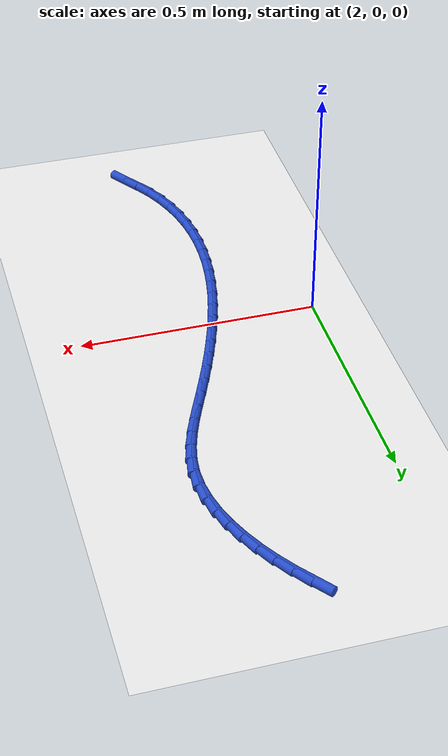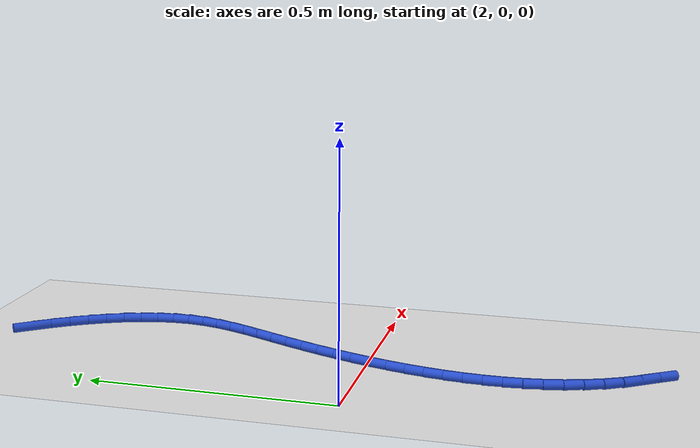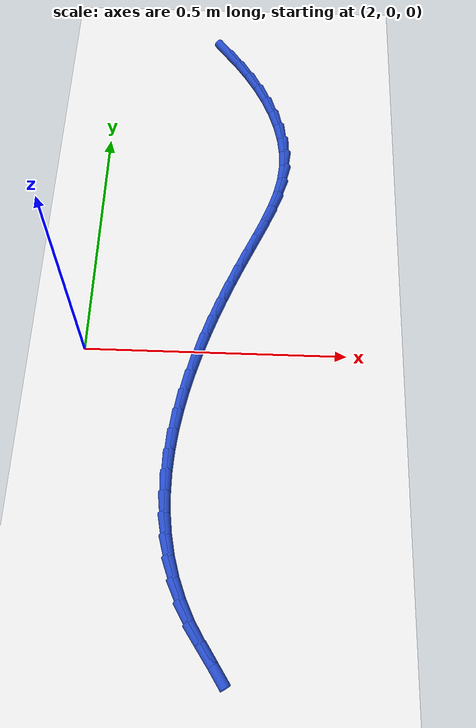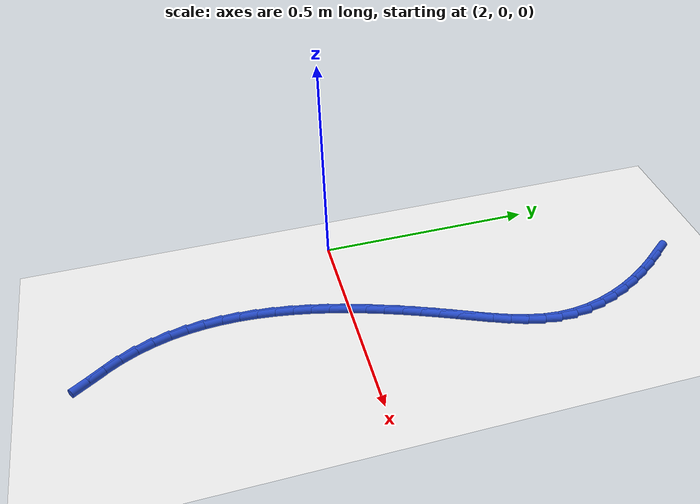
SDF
<sdf version="1.6">
 <world name="default">
  <model name="ground_plane">
   <static>1</static>
   <link name="link">
    <collision name="collision">
     <geometry><plane><normal>0 0 1</normal><size>100 100</size></plane></geometry>
     <surface><friction><ode><mu>100</mu><mu2>50</mu2></ode></friction></surface>
    </collision>
    <visual name="visual">
     <cast_shadows>0</cast_shadows>
     <geometry><plane><normal>0 0 1</normal><size>100 100</size></plane></geometry>
     <material>
      <script><uri>file://media/materials/scripts/gazebo.material</uri><name>Gazebo/WhiteGlow</name></script>
     </material>
    </visual>
   </link>
  </model>
  <model name="line">
   <link name="link_94">
    <pose>2.243678991151445 0.7526228496867304 0.01 0 1.57 -0.906889756862248</pose>
    <collision name="collision">
     <geometry><cylinder><radius>0.01</radius><length>0.08</length></cylinder></geometry>
    </collision>
    <visual name="visual">
     <material>
      <script><name>Gazebo/Blue</name><uri>file://media/materials/scripts/gazebo.material</uri></script>
     </material>
     <geometry><cylinder><radius>0.01</radius><length>0.08</length></cylinder></geometry>
    </visual>
   </link>
   <link name="link_95">
    <pose>2.268815365783483 0.7204949092897787 0.01 0 1.57 -0.9615525213683467</pose>
    <collision name="collision">
     <geometry><cylinder><radius>0.01</radius><length>0.08</length></cylinder></geometry>
    </collision>
    <visual name="visual">
     <material>
      <script><name>Gazebo/Blue</name><uri>file://media/materials/scripts/gazebo.material</uri></script>
     </material>
     <geometry><cylinder><radius>0.01</radius><length>0.08</length></cylinder></geometry>
    </visual>
   </link>
   <link name="link_96">
    <pose>2.292071177973598 0.687167284648563 0.01 0 1.57 -1.0210614063245282</pose>
    <collision name="collision">
     <geometry><cylinder><radius>0.01</radius><length>0.08</length></cylinder></geometry>
    </collision>
    <visual name="visual">
     <material>
      <script><name>Gazebo/Blue</name><uri>file://media/materials/scripts/gazebo.material</uri></script>
     </material>
     <geometry><cylinder><radius>0.01</radius><length>0.08</length></cylinder></geometry>
    </visual>
   </link>
   <link name="link_97">
    <pose>2.313108702196502 0.6528337902882548 0.01 0 1.57 -1.0866782366630476</pose>
    <collision name="collision">
     <geometry><cylinder><radius>0.01</radius><length>0.08</length></cylinder></geometry>
    </collision>
    <visual name="visual">
     <material>
      <script><name>Gazebo/Blue</name><uri>file://media/materials/scripts/gazebo.material</uri></script>
     </material>
     <geometry><cylinder><radius>0.01</radius><length>0.08</length></cylinder></geometry>
    </visual>
   </link>
   <link name="link_98">
    <pose>2.331590212926911 0.617688240734027 0.01 0 1.57 -1.159768734302943</pose>
    <collision name="collision">
     <geometry><cylinder><radius>0.01</radius><length>0.08</length></cylinder></geometry>
    </collision>
    <visual name="visual">
     <material>
      <script><name>Gazebo/Blue</name><uri>file://media/materials/scripts/gazebo.material</uri></script>
     </material>
     <geometry><cylinder><radius>0.01</radius><length>0.08</length></cylinder></geometry>
    </visual>
   </link>
   <link name="link_99">
    <pose>2.3471779846395364 0.581924450511052 0.01 0 1.57 -1.241762588432739</pose>
    <collision name="collision">
     <geometry><cylinder><radius>0.01</radius><length>0.08</length></cylinder></geometry>
    </collision>
    <visual name="visual">
     <material>
      <script><name>Gazebo/Blue</name><uri>file://media/materials/scripts/gazebo.material</uri></script>
     </material>
     <geometry><cylinder><radius>0.01</radius><length>0.08</length></cylinder></geometry>
    </visual>
   </link>
   <link name="link_100">
    <pose>2.359534291809092 0.5457362341445018 0.01 0 1.57 -1.3340418703348018</pose>
    <collision name="collision">
     <geometry><cylinder><radius>0.01</radius><length>0.08</length></cylinder></geometry>
    </collision>
    <visual name="visual">
     <material>
      <script><name>Gazebo/Blue</name><uri>file://media/materials/scripts/gazebo.material</uri></script>
     </material>
     <geometry><cylinder><radius>0.01</radius><length>0.08</length></cylinder></geometry>
    </visual>
   </link>
   <link name="link_101">
    <pose>2.36832140891029 0.5093174061595491 0.01 0 1.57 -1.4377205847119823</pose>
    <collision name="collision">
     <geometry><cylinder><radius>0.01</radius><length>0.08</length></cylinder></geometry>
    </collision>
    <visual name="visual">
     <material>
      <script><name>Gazebo/Blue</name><uri>file://media/materials/scripts/gazebo.material</uri></script>
     </material>
     <geometry><cylinder><radius>0.01</radius><length>0.08</length></cylinder></geometry>
    </visual>
   </link>
   <link name="link_102">
    <pose>2.373201610417844 0.47286178108136595 0.01 0 1.57 -1.553288893500495</pose>
    <collision name="collision">
     <geometry><cylinder><radius>0.01</radius><length>0.08</length></cylinder></geometry>
    </collision>
    <visual name="visual">
     <material>
      <script><name>Gazebo/Blue</name><uri>file://media/materials/scripts/gazebo.material</uri></script>
     </material>
     <geometry><cylinder><radius>0.01</radius><length>0.08</length></cylinder></geometry>
    </visual>
   </link>
   <link name="link_103">
    <pose>2.373837170806469 0.4365631734351253 0.01 0 1.57 1.4631555103608647</pose>
    <collision name="collision">
     <geometry><cylinder><radius>0.01</radius><length>0.08</length></cylinder></geometry>
    </collision>
    <visual name="visual">
     <material>
      <script><name>Gazebo/Blue</name><uri>file://media/materials/scripts/gazebo.material</uri></script>
     </material>
     <geometry><cylinder><radius>0.01</radius><length>0.08</length></cylinder></geometry>
    </visual>
   </link>
   <link name="link_104">
    <pose>2.369950645725549 0.4005963057045258 0.01 0 1.57 1.3499561610106796</pose>
    <collision name="collision">
     <geometry><cylinder><radius>0.01</radius><length>0.08</length></cylinder></geometry>
    </collision>
    <visual name="visual">
     <material>
      <script><name>Gazebo/Blue</name><uri>file://media/materials/scripts/gazebo.material</uri></script>
     </material>
     <geometry><cylinder><radius>0.01</radius><length>0.08</length></cylinder></geometry>
    </visual>
   </link>
   <link name="link_105">
    <pose>2.3619415854672616 0.3649214850127993 0.01 0 1.57 1.2629321226912877</pose>
    <collision name="collision">
     <geometry><cylinder><radius>0.01</radius><length>0.08</length></cylinder></geometry>
    </collision>
    <visual name="visual">
     <material>
      <script><name>Gazebo/Blue</name><uri>file://media/materials/scripts/gazebo.material</uri></script>
     </material>
     <geometry><cylinder><radius>0.01</radius><length>0.08</length></cylinder></geometry>
    </visual>
   </link>
   <link name="link_106">
    <pose>2.350635281001211 0.3293641793942874 0.01 0 1.57 1.2018377599299133</pose>
    <collision name="collision">
     <geometry><cylinder><radius>0.01</radius><length>0.08</length></cylinder></geometry>
    </collision>
    <visual name="visual">
     <material>
      <script><name>Gazebo/Blue</name><uri>file://media/materials/scripts/gazebo.material</uri></script>
     </material>
     <geometry><cylinder><radius>0.01</radius><length>0.08</length></cylinder></geometry>
    </visual>
   </link>
   <link name="link_107">
    <pose>2.33686363948326 0.2937477614281079 0.01 0 1.57 1.1649656270135986</pose>
    <collision name="collision">
     <geometry><cylinder><radius>0.01</radius><length>0.08</length></cylinder></geometry>
    </collision>
    <visual name="visual">
     <material>
      <script><name>Gazebo/Blue</name><uri>file://media/materials/scripts/gazebo.material</uri></script>
     </material>
     <geometry><cylinder><radius>0.01</radius><length>0.08</length></cylinder></geometry>
    </visual>
   </link>
   <link name="link_108">
    <pose>2.32145856806927 0.2578956036933765 0.01 0 1.57 1.1505238580880426</pose>
    <collision name="collision">
     <geometry><cylinder><radius>0.01</radius><length>0.08</length></cylinder></geometry>
    </collision>
    <visual name="visual">
     <material>
      <script><name>Gazebo/Blue</name><uri>file://media/materials/scripts/gazebo.material</uri></script>
     </material>
     <geometry><cylinder><radius>0.01</radius><length>0.08</length></cylinder></geometry>
    </visual>
   </link>
   <link name="link_109">
    <pose>2.305251973915107 0.2216310787692109 0.01 0 1.57 1.156453511557667</pose>
    <collision name="collision">
     <geometry><cylinder><radius>0.01</radius><length>0.08</length></cylinder></geometry>
    </collision>
    <visual name="visual">
     <material>
      <script><name>Gazebo/Blue</name><uri>file://media/materials/scripts/gazebo.material</uri></script>
     </material>
     <geometry><cylinder><radius>0.01</radius><length>0.08</length></cylinder></geometry>
    </visual>
   </link>
   <link name="link_110">
    <pose>2.289048343628091 0.18478825064532356 0.01 0 1.57 1.1722602333121035</pose>
    <collision name="collision">
     <geometry><cylinder><radius>0.01</radius><length>0.08</length></cylinder></geometry>
    </collision>
    <visual name="visual">
     <material>
      <script><name>Gazebo/Blue</name><uri>file://media/materials/scripts/gazebo.material</uri></script>
     </material>
     <geometry><cylinder><radius>0.01</radius><length>0.08</length></cylinder></geometry>
    </visual>
   </link>
   <link name="link_111">
    <pose>2.2732823250378216 0.14734538532186747 0.01 0 1.57 1.1908664126857162</pose>
    <collision name="collision">
     <geometry><cylinder><radius>0.01</radius><length>0.08</length></cylinder></geometry>
    </collision>
    <visual name="visual">
     <material>
      <script><name>Gazebo/Blue</name><uri>file://media/materials/scripts/gazebo.material</uri></script>
     </material>
     <geometry><cylinder><radius>0.01</radius><length>0.08</length></cylinder></geometry>
    </visual>
   </link>
   <link name="link_112">
    <pose>2.258123231250991 0.10938420414977622 0.01 0 1.57 1.2122464359119685</pose>
    <collision name="collision">
     <geometry><cylinder><radius>0.01</radius><length>0.08</length></cylinder></geometry>
    </collision>
    <visual name="visual">
     <material>
      <script><name>Gazebo/Blue</name><uri>file://media/materials/scripts/gazebo.material</uri></script>
     </material>
     <geometry><cylinder><radius>0.01</radius><length>0.08</length></cylinder></geometry>
    </visual>
   </link>
   <link name="link_113">
    <pose>2.243734580828604 0.07098868780266324 0.01 0 1.57 1.236569236292683</pose>
    <collision name="collision">
     <geometry><cylinder><radius>0.01</radius><length>0.08</length></cylinder></geometry>
    </collision>
    <visual name="visual">
     <material>
      <script><name>Gazebo/Blue</name><uri>file://media/materials/scripts/gazebo.material</uri></script>
     </material>
     <geometry><cylinder><radius>0.01</radius><length>0.08</length></cylinder></geometry>
    </visual>
   </link>
   <link name="link_114">
    <pose>2.230279892331663 0.03224281695414117 0.01 0 1.57 1.2640424185364652</pose>
    <collision name="collision">
     <geometry><cylinder><radius>0.01</radius><length>0.08</length></cylinder></geometry>
    </collision>
    <visual name="visual">
     <material>
      <script><name>Gazebo/Blue</name><uri>file://media/materials/scripts/gazebo.material</uri></script>
     </material>
     <geometry><cylinder><radius>0.01</radius><length>0.08</length></cylinder></geometry>
    </visual>
   </link>
   <link name="link_115">
    <pose>2.217922684321173 -0.006769427722174632 0.01 0 1.57 1.2949104251453938</pose>
    <collision name="collision">
     <geometry><cylinder><radius>0.01</radius><length>0.08</length></cylinder></geometry>
    </collision>
    <visual name="visual">
     <material>
      <script><name>Gazebo/Blue</name><uri>file://media/materials/scripts/gazebo.material</uri></script>
     </material>
     <geometry><cylinder><radius>0.01</radius><length>0.08</length></cylinder></geometry>
    </visual>
   </link>
   <link name="link_116">
    <pose>2.2068264753581333 -0.04596406555267153 0.01 0 1.57 1.3294514929600645</pose>
    <collision name="collision">
     <geometry><cylinder><radius>0.01</radius><length>0.08</length></cylinder></geometry>
    </collision>
    <visual name="visual">
     <material>
      <script><name>Gazebo/Blue</name><uri>file://media/materials/scripts/gazebo.material</uri></script>
     </material>
     <geometry><cylinder><radius>0.01</radius><length>0.08</length></cylinder></geometry>
    </visual>
   </link>
   <link name="link_117">
    <pose>2.19715478400355 -0.08525711586373605 0.01 0 1.57 1.367972279451603</pose>
    <collision name="collision">
     <geometry><cylinder><radius>0.01</radius><length>0.08</length></cylinder></geometry>
    </collision>
    <visual name="visual">
     <material>
      <script><name>Gazebo/Blue</name><uri>file://media/materials/scripts/gazebo.material</uri></script>
     </material>
     <geometry><cylinder><radius>0.01</radius><length>0.08</length></cylinder></geometry>
    </visual>
   </link>
   <link name="link_118">
    <pose>2.189071128818425 -0.12456459798175568 0.01 0 1.57 1.4107987126436898</pose>
    <collision name="collision">
     <geometry><cylinder><radius>0.01</radius><length>0.08</length></cylinder></geometry>
    </collision>
    <visual name="visual">
     <material>
      <script><name>Gazebo/Blue</name><uri>file://media/materials/scripts/gazebo.material</uri></script>
     </material>
     <geometry><cylinder><radius>0.01</radius><length>0.08</length></cylinder></geometry>
    </visual>
   </link>
   <link name="link_119">
    <pose>2.1827390283637618 -0.1638025312331148 0.01 0 1.57 1.4582612735068157</pose>
    <collision name="collision">
     <geometry><cylinder><radius>0.01</radius><length>0.08</length></cylinder></geometry>
    </collision>
    <visual name="visual">
     <material>
      <script><name>Gazebo/Blue</name><uri>file://media/materials/scripts/gazebo.material</uri></script>
     </material>
     <geometry><cylinder><radius>0.01</radius><length>0.08</length></cylinder></geometry>
    </visual>
   </link>
   <link name="link_120">
    <pose>2.1783220012005637 -0.2028869349442011 0.01 0 1.57 1.5106726792844691</pose>
    <collision name="collision">
     <geometry><cylinder><radius>0.01</radius><length>0.08</length></cylinder></geometry>
    </collision>
    <visual name="visual">
     <material>
      <script><name>Gazebo/Blue</name><uri>file://media/materials/scripts/gazebo.material</uri></script>
     </material>
     <geometry><cylinder><radius>0.01</radius><length>0.08</length></cylinder></geometry>
    </visual>
   </link>
   <link name="link_121">
    <pose>2.1759835658898328 -0.2417338284414009 0.01 0 1.57 1.5682960363368803</pose>
    <collision name="collision">
     <geometry><cylinder><radius>0.01</radius><length>0.08</length></cylinder></geometry>
    </collision>
    <visual name="visual">
     <material>
      <script><name>Gazebo/Blue</name><uri>file://media/materials/scripts/gazebo.material</uri></script>
     </material>
     <geometry><cylinder><radius>0.01</radius><length>0.08</length></cylinder></geometry>
    </visual>
   </link>
   <link name="link_122">
    <pose>2.175887240992573 -0.2802592310511016 0.01 0 1.57 -1.5102903074598304</pose>
    <collision name="collision">
     <geometry><cylinder><radius>0.01</radius><length>0.08</length></cylinder></geometry>
    </collision>
    <visual name="visual">
     <material>
      <script><name>Gazebo/Blue</name><uri>file://media/materials/scripts/gazebo.material</uri></script>
     </material>
     <geometry><cylinder><radius>0.01</radius><length>0.08</length></cylinder></geometry>
    </visual>
   </link>
   <link name="link_123">
    <pose>2.1781965450697878 -0.318379162099688 0.01 0 1.57 -1.44187440641095</pose>
    <collision name="collision">
     <geometry><cylinder><radius>0.01</radius><length>0.08</length></cylinder></geometry>
    </collision>
    <visual name="visual">
     <material>
      <script><name>Gazebo/Blue</name><uri>file://media/materials/scripts/gazebo.material</uri></script>
     </material>
     <geometry><cylinder><radius>0.01</radius><length>0.08</length></cylinder></geometry>
    </visual>
   </link>
   <link name="link_124">
    <pose>2.1830749966824787 -0.35600964091354725 0.01 0 1.57 -1.3682242369822364</pose>
    <collision name="collision">
     <geometry><cylinder><radius>0.01</radius><length>0.08</length></cylinder></geometry>
    </collision>
    <visual name="visual">
     <material>
      <script><name>Gazebo/Blue</name><uri>file://media/materials/scripts/gazebo.material</uri></script>
     </material>
     <geometry><cylinder><radius>0.01</radius><length>0.08</length></cylinder></geometry>
    </visual>
   </link>
   <link name="link_125">
    <pose>2.1906861143916494 -0.39306668681906604 0.01 0 1.57 -1.2897707168787913</pose>
    <collision name="collision">
     <geometry><cylinder><radius>0.01</radius><length>0.08</length></cylinder></geometry>
    </collision>
    <visual name="visual">
     <material>
      <script><name>Gazebo/Blue</name><uri>file://media/materials/scripts/gazebo.material</uri></script>
     </material>
     <geometry><cylinder><radius>0.01</radius><length>0.08</length></cylinder></geometry>
    </visual>
   </link>
   <link name="link_126">
    <pose>2.2011934167583043 -0.4294663191426316 0.01 0 1.57 -1.2072358498447182</pose>
    <collision name="collision">
     <geometry><cylinder><radius>0.01</radius><length>0.08</length></cylinder></geometry>
    </collision>
    <visual name="visual">
     <material>
      <script><name>Gazebo/Blue</name><uri>file://media/materials/scripts/gazebo.material</uri></script>
     </material>
     <geometry><cylinder><radius>0.01</radius><length>0.08</length></cylinder></geometry>
    </visual>
   </link>
   <link name="link_127">
    <pose>2.2147604223434447 -0.4651245572106287 0.01 0 1.57 -1.1216337909815015</pose>
    <collision name="collision">
     <geometry><cylinder><radius>0.01</radius><length>0.08</length></cylinder></geometry>
    </collision>
    <visual name="visual">
     <material>
      <script><name>Gazebo/Blue</name><uri>file://media/materials/scripts/gazebo.material</uri></script>
     </material>
     <geometry><cylinder><radius>0.01</radius><length>0.08</length></cylinder></geometry>
    </visual>
   </link>
   <link name="link_128">
    <pose>2.2315506497080744 -0.4999574203494447 0.01 0 1.57 -1.0342255080359424</pose>
    <collision name="collision">
     <geometry><cylinder><radius>0.01</radius><length>0.08</length></cylinder></geometry>
    </collision>
    <visual name="visual">
     <material>
      <script><name>Gazebo/Blue</name><uri>file://media/materials/scripts/gazebo.material</uri></script>
     </material>
     <geometry><cylinder><radius>0.01</radius><length>0.08</length></cylinder></geometry>
    </visual>
   </link>
   <link name="link_129">
    <pose>2.251727599766484 -0.5338809278528279 0.01 0 1.57 -0.9663871313756692</pose>
    <collision name="collision">
     <geometry><cylinder><radius>0.01</radius><length>0.08</length></cylinder></geometry>
    </collision>
    <visual name="visual">
     <material>
      <script><name>Gazebo/Blue</name><uri>file://media/materials/scripts/gazebo.material</uri></script>
     </material>
     <geometry><cylinder><radius>0.01</radius><length>0.08</length></cylinder></geometry>
    </visual>
   </link>
   <link name="link_130">
    <pose>2.2744688823025423 -0.5668092755738425 0.01 0 1.57 -0.9911537757766121</pose>
    <collision name="collision">
     <geometry><cylinder><radius>0.01</radius><length>0.08</length></cylinder></geometry>
    </collision>
    <visual name="visual">
     <material>
      <script><name>Gazebo/Blue</name><uri>file://media/materials/scripts/gazebo.material</uri></script>
     </material>
     <geometry><cylinder><radius>0.01</radius><length>0.08</length></cylinder></geometry>
    </visual>
   </link>
  </model>
 </world>
</sdf>
